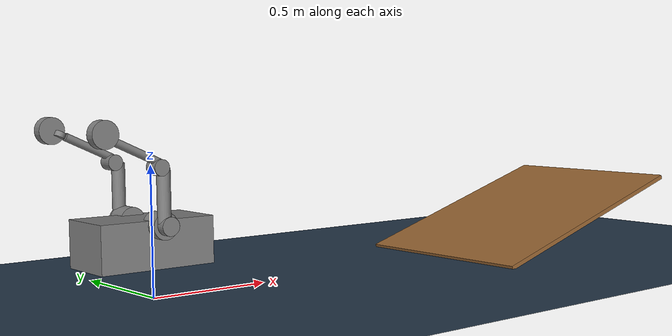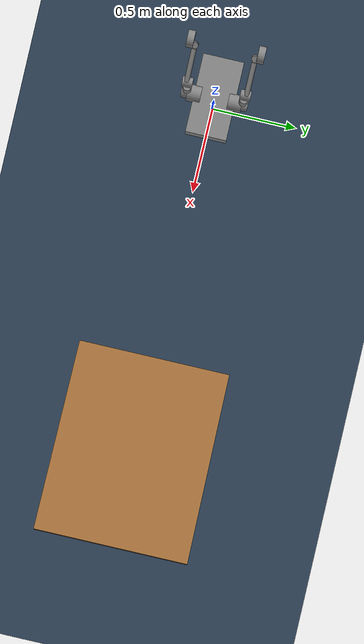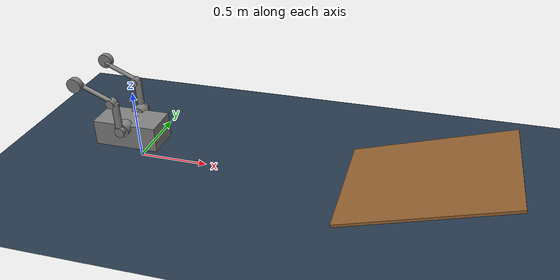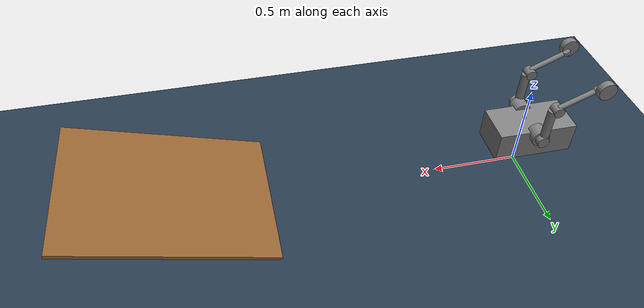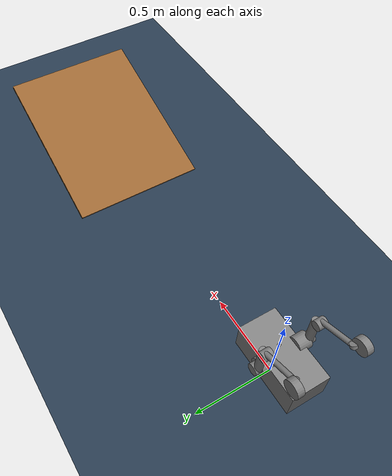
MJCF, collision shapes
<mujoco model="helios_leg">
    <compiler angle="radian" meshdir="../meshes/" eulerseq="zyx"/>
    <option timestep='0.001' iterations='50' solver='PGS' gravity='0 0 -9.81'>
        <flag frictionloss="enable" sensor="enable"/>
    </option>
    <size njmax="500" nconmax="100" />

    <visual>
        <quality shadowsize="4096"/>
        <map znear="0.05"/>
        <global offwidth="1920" offheight="1080"/>
    </visual>

    <default>
        <joint limited="true"/>
        <motor ctrllimited="true"/>
        <geom condim="4" contype="1" conaffinity="15" solref="0.001 2" friction="0.9 0.2 0.2"/>
        <equality solref="0.001 2"/>
        <default class="leg_joint_param">
            <joint damping="0.01" frictionloss="0.01" armature="0.01"/>
        </default>
    </default>

    <asset>
        <mesh name="base_link" file="base_link.STL" />
        <mesh name="right_thigh_link" file="right_thigh_link.STL" />
        <mesh name="right_calf_link" file="right_calf_link.STL" />
        <mesh name="right_foot_link" file="right_foot_link.STL" />
        <mesh name="left_thigh_link" file="left_thigh_link.STL" />
        <mesh name="left_calf_link" file="left_calf_link.STL" />
        <mesh name="left_foot_link" file="left_foot_link.STL" />
        <material name="matplane" reflectance="0.3" texture="texplane" texrepeat="1 1" texuniform="true"/>
        <material name="matgeom" texture="texgeom" texuniform="true" rgba="0.8 0.6 .4 1"/>
        <texture name="texplane" type="2d" builtin="checker" rgb1=".2 .3 .4" rgb2=".1 0.15 0.2" width="512" height="512" mark="cross" markrgb=".8 .8 .8"/>
        <texture name="texgeom" type="cube" builtin="flat" mark="cross" width="127" height="1278" rgb1="0.8 0.6 0.4" rgb2="0.8 0.6 0.4" markrgb="1 1 1" random="0.01"/>
        <texture type="skybox" builtin="gradient" rgb1="1 1 1" rgb2=".6 .8 1" width="256" height="256"/>
    </asset>

    <worldbody>
        <!-- 灯光 -->
        <light directional="true" diffuse=".4 .4 .4" specular="0.1 0.1 0.1" pos="0 0 5.0" dir="0 0 -1" castshadow="false"/>
        <light directional="true" diffuse=".6 .6 .6" specular="0.2 0.2 0.2" pos="0 0 4" dir="0 0 -1"/>
        <!-- 地面 -->
        <geom name="ground" type="plane" size="0 0 1" pos="0.001 0 0" quat="1 0 0 0" material="matplane" condim="3" conaffinity='15' friction="2.0 0.01 0.0001"/>

        <!-- 跳跃斜坡 (Jump Ramp)
             水平投影: 1.1m, 坡角: 17°, 宽度: 0.9m
             坡面长度: 1.150m, 高度: 0.336m
             位置: 机器人前方 1.5m 处开始
        -->
        <geom name="jump_ramp" type="box"
              size="0.575 0.45 0.01"
              pos="2.05 0 0.168"
              euler="0 -0.2967 0"
              rgba="0.6 0.4 0.2 1"
              condim="3" conaffinity="15"
              friction="1.5 0.01 0.0001"/>

        <body name="base_link" pos='0 0 0.32'>
            <!-- IMU 传感器位置 -->
            <site name='imu' size='0.01' pos='0.0 0 0.0' quat='1 0 0 0'/>
            <!-- base_link 惯性参数 -->
            <inertial pos="-0.0384 -0.0009 -0.0655" mass="7.3247"
                      fullinertia="0.1185 0.1507 0.2153 0.0001 0.0038 0.0004"/>
            <!-- 自由关节 -->
            <joint name="floating_base_joint" type="free" limited='false'/>
            <!-- 视觉网格 -->
            <geom type="mesh" contype="0" conaffinity="0" group="1" density="0" rgba="1 1 1 1" mesh="base_link" />
            <!-- base_link 碰撞体 (group=2 不可见) -->
            <geom name="base_collision_main" type="box" size="0.23 0.12 0.09" pos="-0.04 0 -0.1" group="2"/>
            <geom name="base_collision_right" type="cylinder" size="0.05 0.04" pos="-0.034 -0.12 -0.03" quat="0.707105 0.707108 0 0" group="2"/>
            <geom name="base_collision_left" type="cylinder" size="0.05 0.04" pos="-0.034 0.12 -0.03" quat="0.707105 0.707108 0 0" group="2"/>

            <body name="right_thigh_link" pos="-0.0337728 -0.164615 -0.0275">
                <inertial pos="-0.0137451 0.0110123 0.0984246" quat="0.706065 -0.0270668 -0.0552791 0.705467" mass="0.29712" diaginertia="0.0020344 0.00192086 0.000140442" />
                <joint name="right_thigh_joint" pos="0 0 0" axis="0 -1 0" limited="true" range="0.7 2.7" actuatorfrcrange="-40 40" class="leg_joint_param"/>
                <!-- 视觉网格 -->
                <geom type="mesh" contype="0" conaffinity="0" group="1" density="0" rgba="1 1 1 1" mesh="right_thigh_link" />
                <!-- 碰撞体 -->
                <geom name="right_thigh_motor" type="cylinder" size="0.035 0.05" pos="0 0.02 0" quat="0.707105 0.707108 0 0" group="2"/>
                <geom name="right_thigh_link_col" type="cylinder" size="0.025 0.1" pos="-0.01 0 0.11" group="2"/>

                <body name="right_calf_link" pos="-0.0331636 -0.0185 0.212427">
                    <inertial pos="-0.083871 0.0078304 0.047461" quat="0.353918 0.607188 0.610724 0.364802" mass="0.312366" diaginertia="0.00366667 0.00351845 0.000176974" />
                    <joint name="right_calf_joint" pos="0 0 0" axis="0 1 0" limited="true" range="-2.1 0.9" actuatorfrcrange="-40 40" class="leg_joint_param"/>
                    <!-- 视觉网格 -->
                    <geom type="mesh" contype="0" conaffinity="0" group="1" density="0" rgba="1 1 1 1" mesh="right_calf_link" />
                    <!-- 碰撞体 -->
                    <geom name="right_calf_motor" type="cylinder" size="0.03 0.03" pos="0 0.015 0" quat="0.707105 0.707108 0 0" group="2"/>
                    <geom name="right_calf_link1" type="cylinder" size="0.015 0.1" pos="-0.09 0.01 0.06" quat="0.540302 0 0.841471 0" group="2"/>
                    <geom name="right_calf_link2" type="cylinder" size="0.02 0.01" pos="-0.2 0.01 0.11" quat="0.973666 0 0.227978 0" group="2"/>

                    <body name="right_foot_link" pos="-0.226464 -0.0392 0.123605">
                        <inertial pos="-1.5e-06 0.0197779 -1.14e-05" quat="0.371748 0.601501 0.601501 0.371748" mass="1.10155" diaginertia="0.0013495 0.0008536 0.0008531" />
                        <joint name="right_foot_joint" type="hinge" pos="0 0 0" axis="0 1 0" limited="false" actuatorfrcrange="-40 40" class="leg_joint_param"/>
                        <!-- 视觉网格 -->
                        <geom type="mesh" contype="0" conaffinity="0" group="1" density="0" rgba="0.90196 0.92157 0.92157 1" mesh="right_foot_link" />
                        <!-- 碰撞体: 轮子 -->
                        <geom name="right_wheel_collision" type="cylinder" size="0.05 0.02" pos="0 0.02 0" quat="0.707105 0.707108 0 0" group="2"/>
                    </body>
                </body>
            </body>

            <body name="left_thigh_link" pos="-0.0337728 0.164615 -0.0275">
                <inertial pos="-0.0137451 -0.0110123 0.0984246" quat="0.705467 -0.0552791 -0.0270668 0.706065" mass="0.29712" diaginertia="0.0020344 0.00192086 0.000140442" />
                <joint name="left_thigh_joint" pos="0 0 0" axis="0 1 0" limited="true" range="-2.7 -0.7" actuatorfrcrange="-40 40" class="leg_joint_param"/>
                <!-- 视觉网格 -->
                <geom type="mesh" contype="0" conaffinity="0" group="1" density="0" rgba="0.89804 0.91765 0.92941 1" mesh="left_thigh_link" />
                <!-- 碰撞体 -->
                <geom name="left_thigh_motor" type="cylinder" size="0.035 0.05" pos="0 -0.02 0" quat="0.707105 0.707108 0 0" group="2"/>
                <geom name="left_thigh_link_col" type="cylinder" size="0.025 0.1" pos="-0.01 0 0.11" group="2"/>

                <body name="left_calf_link" pos="-0.0331636 0.0185 0.212427">
                    <inertial pos="-0.083871 -0.0078304 0.047461" quat="0.364802 0.610724 0.607188 0.353918" mass="0.312366" diaginertia="0.00366667 0.00351845 0.000176974" />
                    <joint name="left_calf_joint" pos="0 0 0" axis="0 -1 0" limited="true" range="-0.9 2.1" actuatorfrcrange="-40 40" class="leg_joint_param"/>
                    <!-- 视觉网格 -->
                    <geom type="mesh" contype="0" conaffinity="0" group="1" density="0" rgba="1 1 1 1" mesh="left_calf_link" />
                    <!-- 碰撞体 -->
                    <geom name="left_calf_motor" type="cylinder" size="0.03 0.03" pos="0 -0.015 0" quat="0.707105 0.707108 0 0" group="2"/>
                    <geom name="left_calf_link1" type="cylinder" size="0.015 0.1" pos="-0.09 -0.01 0.06" quat="0.540302 0 0.841471 0" group="2"/>
                    <geom name="left_calf_link2" type="cylinder" size="0.02 0.01" pos="-0.2 -0.01 0.11" quat="0.973666 0 0.227978 0" group="2"/>

                    <body name="left_foot_link" pos="-0.226464 0.0392 0.123605">
                        <inertial pos="-1.5e-06 -0.0197779 -1.14e-05" quat="0.371748 0.601501 0.601501 0.371748" mass="1.10155" diaginertia="0.0013495 0.0008536 0.0008531" />
                        <joint name="left_foot_joint" type="hinge" pos="0 0 0" axis="0 -1 0" limited="false" actuatorfrcrange="-40 40" class="leg_joint_param"/>
                        <!-- 视觉网格 -->
                        <geom type="mesh" contype="0" conaffinity="0" group="1" density="0" rgba="0.89804 0.91765 0.92941 1" mesh="left_foot_link" />
                        <!-- 碰撞体: 轮子 -->
                        <geom name="left_wheel_collision" type="cylinder" size="0.05 0.02" pos="0 -0.02 0" quat="0.707105 0.707108 0 0" group="2"/>
                    </body>
                </body>
            </body>
        </body>
    </worldbody>

    <actuator>
        <!-- 右腿关节 - 40Nm (匹配URDF effort限制) -->
        <motor name="right_thigh_joint" joint="right_thigh_joint" gear="1" ctrllimited="true" ctrlrange="-200 200"/>
        <motor name="right_calf_joint" joint="right_calf_joint" gear="1" ctrllimited="true" ctrlrange="-200 200"/>

        <!-- 左腿关节 - 40Nm -->
        <motor name="left_thigh_joint" joint="left_thigh_joint" gear="1" ctrllimited="true" ctrlrange="-200 200"/>
        <motor name="left_calf_joint" joint="left_calf_joint" gear="1" ctrllimited="true" ctrlrange="-200 200"/>

        <!-- 轮子关节 - 40Nm -->
        <motor name="right_foot_joint" joint="right_foot_joint" gear="1" ctrllimited="true" ctrlrange="-60 60"/>
        <motor name="left_foot_joint" joint="left_foot_joint" gear="1" ctrllimited="true" ctrlrange="-60 60"/>
    </actuator>

    <sensor>
        <framequat     name='orientation' objtype='site' noise='0.001' objname='imu'/>
        <framepos      name='position' objtype='site' noise='0.001' objname='imu'/>
        <gyro          name='angular-velocity'    site='imu' noise='0.005' cutoff='34.9'/>
        <velocimeter   name='linear-velocity'     site='imu' noise='0.001' cutoff='30'/>
        <accelerometer name='linear-acceleration' site='imu' noise='0.005' cutoff='157'/>
        <magnetometer  name='magnetometer'        site='imu'/>
    </sensor>
</mujoco>
